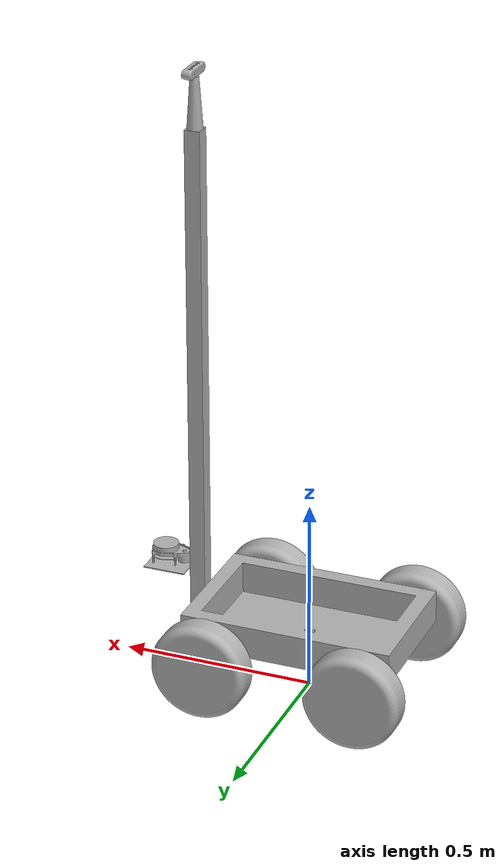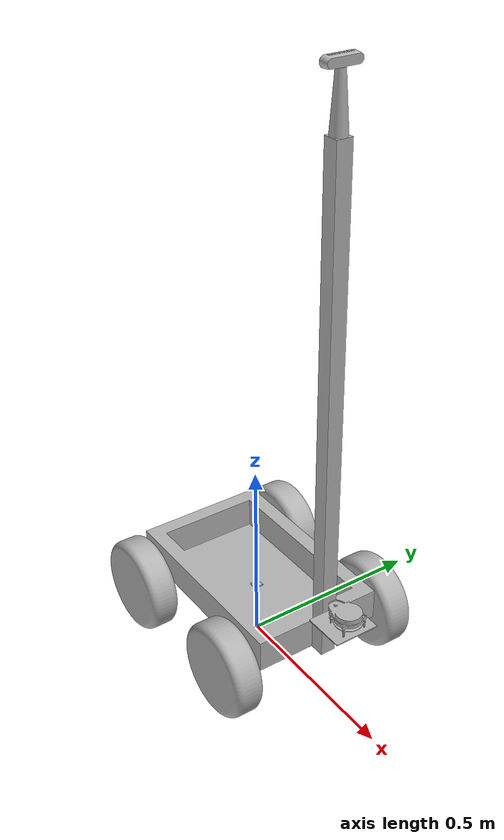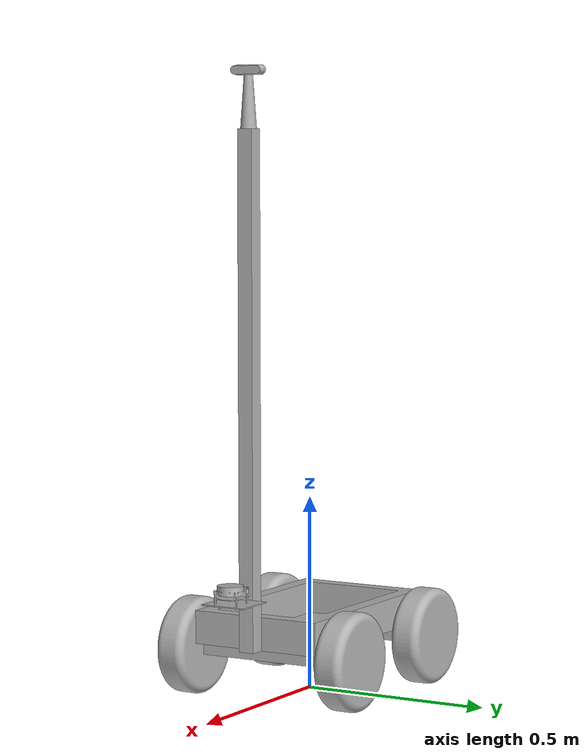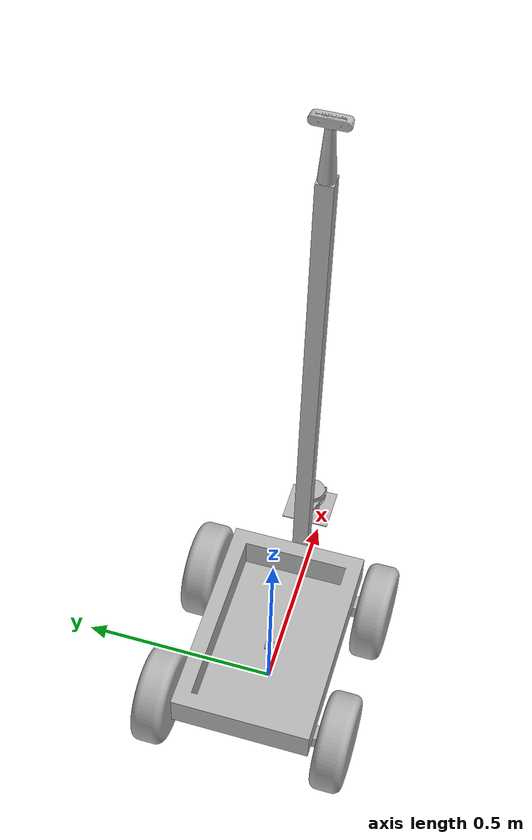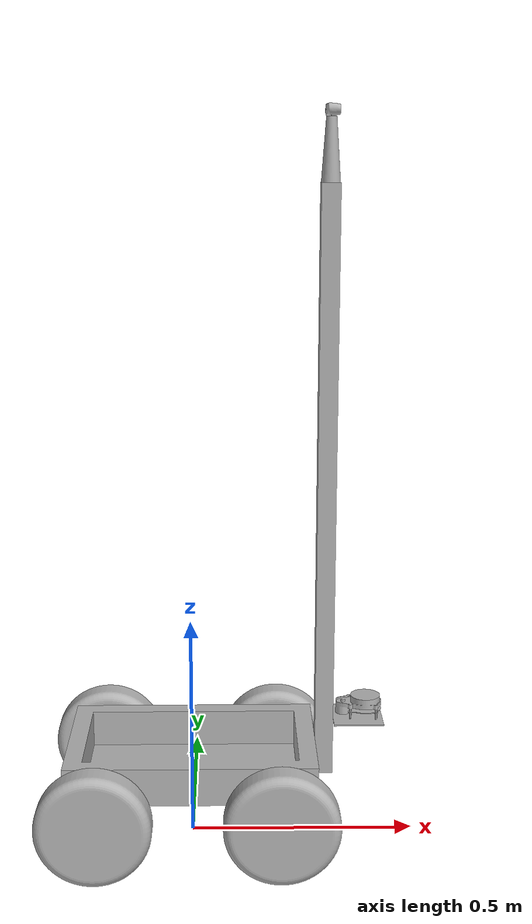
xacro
<?xml version="1.0" ?>
<robot name="Astolf_urdf" xmlns:xacro="http://www.ros.org/wiki/xacro">

<xacro:include filename="$(find Astolf_urdf_description)/urdf/materials.xacro" />
<xacro:include filename="$(find Astolf_urdf_description)/urdf/Astolf_urdf.trans" />
<xacro:include filename="$(find Astolf_urdf_description)/urdf/Astolf_urdf.gazebo" />
<link name="base_link">
  <inertial>
    <origin xyz="0.0005019490136826831 -0.0001572799951760828 0.18620132162083142" rpy="0 0 0"/>
    <mass value="15.740460000000004"/>
    <inertia ixx="0.288422" iyy="0.600365" izz="0.8684" ixy="0.0" iyz="0.0" ixz="0.0"/>
  </inertial>
  <visual>
    <origin xyz="0 0 0" rpy="0 0 0"/>
    <geometry>
      <mesh filename="package://Astolf_urdf_description/meshes/base_link.stl" scale="0.001 0.001 0.001"/>
    </geometry>
    <material name="silver"/>
  </visual>
  <collision>
    <origin xyz="0 0 0" rpy="0 0 0"/>
    <geometry>
      <mesh filename="package://Astolf_urdf_description/meshes/base_link.stl" scale="0.001 0.001 0.001"/>
    </geometry>
  </collision>
</link>

<link name="center_profile_1">
  <inertial>
    <origin xyz="0.019999949013682572 -2.799951749104439e-07 0.6500000216791524" rpy="0 0 0"/>
    <mass value="5.616"/>
    <inertia ixx="0.791669" iyy="0.791669" izz="0.001498" ixy="0.0" iyz="-0.0" ixz="0.0"/>
  </inertial>
  <visual>
    <origin xyz="-0.275502 0.000157 -0.145508" rpy="0 0 0"/>
    <geometry>
      <mesh filename="package://Astolf_urdf_description/meshes/center_profile_1.stl" scale="0.001 0.001 0.001"/>
    </geometry>
    <material name="silver"/>
  </visual>
  <collision>
    <origin xyz="-0.275502 0.000157 -0.145508" rpy="0 0 0"/>
    <geometry>
      <mesh filename="package://Astolf_urdf_description/meshes/center_profile_1.stl" scale="0.001 0.001 0.001"/>
    </geometry>
  </collision>
</link>

<link name="lidar_suport_1">
  <inertial>
    <origin xyz="0.5499999490136825 0.24999972000482418 0.11300002167915246" rpy="0 0 0"/>
    <mass value="0.10692000000000024"/>
    <inertia ixx="0.000128" iyy="0.000108" izz="0.000236" ixy="0.0" iyz="-0.0" ixz="0.0"/>
  </inertial>
  <visual>
    <origin xyz="0.179498 0.250157 -0.165508" rpy="0 0 0"/>
    <geometry>
      <mesh filename="package://Astolf_urdf_description/meshes/lidar_suport_1.stl" scale="0.001 0.001 0.001"/>
    </geometry>
    <material name="silver"/>
  </visual>
  <collision>
    <origin xyz="0.179498 0.250157 -0.165508" rpy="0 0 0"/>
    <geometry>
      <mesh filename="package://Astolf_urdf_description/meshes/lidar_suport_1.stl" scale="0.001 0.001 0.001"/>
    </geometry>
  </collision>
</link>

<link name="realsense_suport_1">
  <inertial>
    <origin xyz="0.4947231360152813 0.2499685125835737 0.03257630512957688" rpy="0 0 0"/>
    <mass value="0.10595838064168012"/>
    <inertia ixx="0.000143" iyy="0.000143" izz="1.4e-05" ixy="-0.0" iyz="0.0" ixz="-0.0"/>
  </inertial>
  <visual>
    <origin xyz="0.199498 0.250157 -1.465508" rpy="0 0 0"/>
    <geometry>
      <mesh filename="package://Astolf_urdf_description/meshes/realsense_suport_1.stl" scale="0.001 0.001 0.001"/>
    </geometry>
    <material name="silver"/>
  </visual>
  <collision>
    <origin xyz="0.199498 0.250157 -1.465508" rpy="0 0 0"/>
    <geometry>
      <mesh filename="package://Astolf_urdf_description/meshes/realsense_suport_1.stl" scale="0.001 0.001 0.001"/>
    </geometry>
  </collision>
</link>

<link name="front_m_1">
  <inertial>
    <origin xyz="0.19499994901368256 0.24999972000482393 -0.03999997832084756" rpy="0 0 0"/>
    <mass value="4.772799999999999"/>
    <inertia ixx="0.058069" iyy="0.001273" izz="0.058069" ixy="0.0" iyz="0.0" ixz="-0.0"/>
  </inertial>
  <visual>
    <origin xyz="-0.000502 0.250157 -0.165508" rpy="0 0 0"/>
    <geometry>
      <mesh filename="package://Astolf_urdf_description/meshes/front_m_1.stl" scale="0.001 0.001 0.001"/>
    </geometry>
    <material name="silver"/>
  </visual>
  <collision>
    <origin xyz="-0.000502 0.250157 -0.165508" rpy="0 0 0"/>
    <geometry>
      <mesh filename="package://Astolf_urdf_description/meshes/front_m_1.stl" scale="0.001 0.001 0.001"/>
    </geometry>
  </collision>
</link>

<link name="back_m_1">
  <inertial>
    <origin xyz="-0.20500005098631743 0.24999972000482393 -0.03999997832084756" rpy="0 0 0"/>
    <mass value="4.772799999999999"/>
    <inertia ixx="0.058069" iyy="0.001273" izz="0.058069" ixy="0.0" iyz="-0.0" ixz="-0.0"/>
  </inertial>
  <visual>
    <origin xyz="-0.000502 0.250157 -0.165508" rpy="0 0 0"/>
    <geometry>
      <mesh filename="package://Astolf_urdf_description/meshes/back_m_1.stl" scale="0.001 0.001 0.001"/>
    </geometry>
    <material name="silver"/>
  </visual>
  <collision>
    <origin xyz="-0.000502 0.250157 -0.165508" rpy="0 0 0"/>
    <geometry>
      <mesh filename="package://Astolf_urdf_description/meshes/back_m_1.stl" scale="0.001 0.001 0.001"/>
    </geometry>
  </collision>
</link>

<link name="front_right_wheel_1">
  <inertial>
    <origin xyz="-5.098631744582249e-08 -0.04000027999517608 2.1679152389930678e-08" rpy="0 0 0"/>
    <mass value="3.531183471946012"/>
    <inertia ixx="0.015179" iyy="0.02677" izz="0.015179" ixy="0.0" iyz="-0.0" ixz="-0.0"/>
  </inertial>
  <visual>
    <origin xyz="-0.195502 0.190157 -0.125508" rpy="0 0 0"/>
    <geometry>
      <mesh filename="package://Astolf_urdf_description/meshes/front_right_wheel_1.stl" scale="0.001 0.001 0.001"/>
    </geometry>
    <material name="silver"/>
  </visual>
  <collision>
    <origin xyz="-0.195502 0.190157 -0.125508" rpy="0 0 0"/>
    <geometry>
      <mesh filename="package://Astolf_urdf_description/meshes/front_right_wheel_1.stl" scale="0.001 0.001 0.001"/>
    </geometry>
  </collision>
</link>

<link name="front_left_wheel_1">
  <inertial>
    <origin xyz="-5.0986317362555766e-08 0.039999720004823824 2.1679152417686254e-08" rpy="0 0 0"/>
    <mass value="3.5311834719460093"/>
    <inertia ixx="0.015179" iyy="0.02677" izz="0.015179" ixy="-0.0" iyz="-0.0" ixz="-0.0"/>
  </inertial>
  <visual>
    <origin xyz="-0.195502 -0.189843 -0.125508" rpy="0 0 0"/>
    <geometry>
      <mesh filename="package://Astolf_urdf_description/meshes/front_left_wheel_1.stl" scale="0.001 0.001 0.001"/>
    </geometry>
    <material name="silver"/>
  </visual>
  <collision>
    <origin xyz="-0.195502 -0.189843 -0.125508" rpy="0 0 0"/>
    <geometry>
      <mesh filename="package://Astolf_urdf_description/meshes/front_left_wheel_1.stl" scale="0.001 0.001 0.001"/>
    </geometry>
  </collision>
</link>

<link name="back_right_wheel_1">
  <inertial>
    <origin xyz="-5.098631741806692e-08 -0.04000027999517605 2.1679152417686254e-08" rpy="0 0 0"/>
    <mass value="3.5311834719460125"/>
    <inertia ixx="0.015179" iyy="0.02677" izz="0.015179" ixy="-0.0" iyz="0.0" ixz="0.0"/>
  </inertial>
  <visual>
    <origin xyz="0.204498 0.190157 -0.125508" rpy="0 0 0"/>
    <geometry>
      <mesh filename="package://Astolf_urdf_description/meshes/back_right_wheel_1.stl" scale="0.001 0.001 0.001"/>
    </geometry>
    <material name="silver"/>
  </visual>
  <collision>
    <origin xyz="0.204498 0.190157 -0.125508" rpy="0 0 0"/>
    <geometry>
      <mesh filename="package://Astolf_urdf_description/meshes/back_right_wheel_1.stl" scale="0.001 0.001 0.001"/>
    </geometry>
  </collision>
</link>

<link name="back_left_wheel_1">
  <inertial>
    <origin xyz="-5.098631741806692e-08 0.03999972000482391 2.1679152417686254e-08" rpy="0 0 0"/>
    <mass value="3.5311834719460125"/>
    <inertia ixx="0.015179" iyy="0.02677" izz="0.015179" ixy="-0.0" iyz="-0.0" ixz="0.0"/>
  </inertial>
  <visual>
    <origin xyz="0.204498 -0.189843 -0.125508" rpy="0 0 0"/>
    <geometry>
      <mesh filename="package://Astolf_urdf_description/meshes/back_left_wheel_1.stl" scale="0.001 0.001 0.001"/>
    </geometry>
    <material name="silver"/>
  </visual>
  <collision>
    <origin xyz="0.204498 -0.189843 -0.125508" rpy="0 0 0"/>
    <geometry>
      <mesh filename="package://Astolf_urdf_description/meshes/back_left_wheel_1.stl" scale="0.001 0.001 0.001"/>
    </geometry>
  </collision>
</link>

<link name="realsense_v1_1">
  <inertial>
    <origin xyz="0.0019013299758136593 0.0002471103422558397 0.012439157194748862" rpy="0 0 0"/>
    <mass value="0.3513213158108225"/>
    <inertia ixx="0.000227" iyy="3.2e-05" izz="0.000229" ixy="-1e-06" iyz="-0.0" ixz="-0.0"/>
  </inertial>
  <visual>
    <origin xyz="-0.295173 0.000179 -1.575508" rpy="0 0 0"/>
    <geometry>
      <mesh filename="package://Astolf_urdf_description/meshes/realsense_v1_1.stl" scale="0.001 0.001 0.001"/>
    </geometry>
    <material name="silver"/>
  </visual>
  <collision>
    <origin xyz="-0.295173 0.000179 -1.575508" rpy="0 0 0"/>
    <geometry>
      <mesh filename="package://Astolf_urdf_description/meshes/realsense_v1_1.stl" scale="0.001 0.001 0.001"/>
    </geometry>
  </collision>
</link>

<link name="imu_v2_1">
  <inertial>
    <origin xyz="-8.255948388489467e-07 -2.2100343875138266e-06 0.001172304932095719" rpy="0 0 0"/>
    <mass value="0.010319775464356156"/>
    <inertia ixx="0.0" iyy="1e-06" izz="1e-06" ixy="0.0" iyz="0.0" ixz="0.0"/>
  </inertial>
  <visual>
    <origin xyz="-0.000502 0.000157 -0.147508" rpy="0 0 0"/>
    <geometry>
      <mesh filename="package://Astolf_urdf_description/meshes/imu_v2_1.stl" scale="0.001 0.001 0.001"/>
    </geometry>
    <material name="silver"/>
  </visual>
  <collision>
    <origin xyz="-0.000502 0.000157 -0.147508" rpy="0 0 0"/>
    <geometry>
      <mesh filename="package://Astolf_urdf_description/meshes/imu_v2_1.stl" scale="0.001 0.001 0.001"/>
    </geometry>
  </collision>
</link>

<link name="rplidar_a1_v4_1">
  <inertial>
    <origin xyz="0.22718906129107017 0.31100088458894426 0.0073159259596849435" rpy="0 0 0"/>
    <mass value="0.16092740340489478"/>
    <inertia ixx="6e-05" iyy="0.000123" izz="0.000149" ixy="0.0" iyz="0.0" ixz="-1.8e-05"/>
  </inertial>
  <visual>
    <origin xyz="-0.150502 0.310157 -0.303007" rpy="0 0 0"/>
    <geometry>
      <mesh filename="package://Astolf_urdf_description/meshes/rplidar_a1_v4_1.stl" scale="0.001 0.001 0.001"/>
    </geometry>
    <material name="silver"/>
  </visual>
  <collision>
    <origin xyz="-0.150502 0.310157 -0.303007" rpy="0 0 0"/>
    <geometry>
      <mesh filename="package://Astolf_urdf_description/meshes/rplidar_a1_v4_1.stl" scale="0.001 0.001 0.001"/>
    </geometry>
  </collision>
</link>

<joint name="Rigid1" type="fixed">
  <origin xyz="0.275502 -0.000157 0.145508" rpy="0 0 0"/>
  <parent link="base_link"/>
  <child link="center_profile_1"/>
</joint>

<joint name="Rigid2" type="fixed">
  <origin xyz="-0.455 -0.25 0.02" rpy="0 0 0"/>
  <parent link="center_profile_1"/>
  <child link="lidar_suport_1"/>
</joint>

<joint name="Rigid3" type="fixed">
  <origin xyz="-0.475 -0.25 1.32" rpy="0 0 0"/>
  <parent link="center_profile_1"/>
  <child link="realsense_suport_1"/>
</joint>

<joint name="Rigid9" type="fixed">
  <origin xyz="0.000502 -0.250157 0.165508" rpy="0 0 0"/>
  <parent link="base_link"/>
  <child link="front_m_1"/>
</joint>

<joint name="Rigid10" type="fixed">
  <origin xyz="0.000502 -0.250157 0.165508" rpy="0 0 0"/>
  <parent link="base_link"/>
  <child link="back_m_1"/>
</joint>

<joint name="Rev11" type="continuous">
  <origin xyz="0.195 0.06 -0.04" rpy="0 0 0"/>
  <parent link="front_m_1"/>
  <child link="front_right_wheel_1"/>
  <axis xyz="0.0 -1.0 0.0"/>
</joint>

<joint name="Rev12" type="continuous">
  <origin xyz="0.195 0.44 -0.04" rpy="0 0 0"/>
  <parent link="front_m_1"/>
  <child link="front_left_wheel_1"/>
  <axis xyz="-0.0 1.0 0.0"/>
</joint>

<joint name="Rev13" type="continuous">
  <origin xyz="-0.205 0.06 -0.04" rpy="0 0 0"/>
  <parent link="back_m_1"/>
  <child link="back_right_wheel_1"/>
  <axis xyz="0.0 -1.0 0.0"/>
</joint>

<joint name="Rev14" type="continuous">
  <origin xyz="-0.205 0.44 -0.04" rpy="0 0 0"/>
  <parent link="back_m_1"/>
  <child link="back_left_wheel_1"/>
  <axis xyz="-0.0 1.0 0.0"/>
</joint>

<joint name="Rigid15" type="fixed">
  <origin xyz="0.494671 0.249978 0.11" rpy="0 0 0"/>
  <parent link="realsense_suport_1"/>
  <child link="realsense_v1_1"/>
</joint>

<joint name="Rigid16" type="fixed">
  <origin xyz="0.000502 -0.000157 0.147508" rpy="0 0 0"/>
  <parent link="base_link"/>
  <child link="imu_v2_1"/>
</joint>

<joint name="Rigid17" type="fixed">
  <origin xyz="0.33 -0.06 0.137499" rpy="0 0 0"/>
  <parent link="lidar_suport_1"/>
  <child link="rplidar_a1_v4_1"/>
</joint>

</robot>

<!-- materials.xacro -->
<robot name="Astolf_urdf" xmlns:xacro="http://www.ros.org/wiki/xacro" >

<material name="silver">
  <color rgba="0.700 0.700 0.700 1.000"/>
</material>

</robot>

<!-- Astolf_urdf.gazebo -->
<robot name="Astolf_urdf" xmlns:xacro="http://www.ros.org/wiki/xacro" >

<xacro:property name="body_color" value="Gazebo/Silver" />

<gazebo>
  <plugin name="control" filename="libgazebo_ros_control.so"/>
</gazebo>
<gazebo reference="base_link">
  <material>${body_color}</material>
  <mu1>0.2</mu1>
  <mu2>0.2</mu2>
  <selfCollide>true</selfCollide>
  <gravity>true</gravity>
</gazebo>

<gazebo reference="center_profile_1">
  <material>${body_color}</material>
  <mu1>0.2</mu1>
  <mu2>0.2</mu2>
  <selfCollide>true</selfCollide>
</gazebo>

<gazebo reference="lidar_suport_1">
  <material>${body_color}</material>
  <mu1>0.2</mu1>
  <mu2>0.2</mu2>
  <selfCollide>true</selfCollide>
</gazebo>

<gazebo reference="realsense_suport_1">
  <material>${body_color}</material>
  <mu1>0.2</mu1>
  <mu2>0.2</mu2>
  <selfCollide>true</selfCollide>
</gazebo>

<gazebo reference="front_m_1">
  <material>${body_color}</material>
  <mu1>0.2</mu1>
  <mu2>0.2</mu2>
  <selfCollide>true</selfCollide>
</gazebo>

<gazebo reference="back_m_1">
  <material>${body_color}</material>
  <mu1>0.2</mu1>
  <mu2>0.2</mu2>
  <selfCollide>true</selfCollide>
</gazebo>

<gazebo reference="front_right_wheel_1">
  <material>${body_color}</material>
  <mu1>0.2</mu1>
  <mu2>0.2</mu2>
  <selfCollide>true</selfCollide>
</gazebo>

<gazebo reference="front_left_wheel_1">
  <material>${body_color}</material>
  <mu1>0.2</mu1>
  <mu2>0.2</mu2>
  <selfCollide>true</selfCollide>
</gazebo>

<gazebo reference="back_right_wheel_1">
  <material>${body_color}</material>
  <mu1>0.2</mu1>
  <mu2>0.2</mu2>
  <selfCollide>true</selfCollide>
</gazebo>

<gazebo reference="back_left_wheel_1">
  <material>${body_color}</material>
  <mu1>0.2</mu1>
  <mu2>0.2</mu2>
  <selfCollide>true</selfCollide>
</gazebo>

<gazebo reference="realsense_v1_1">
  <material>${body_color}</material>
  <mu1>0.2</mu1>
  <mu2>0.2</mu2>
  <selfCollide>true</selfCollide>
</gazebo>

<gazebo reference="imu_v2_1">
  <material>${body_color}</material>
  <mu1>0.2</mu1>
  <mu2>0.2</mu2>
  <selfCollide>true</selfCollide>
</gazebo>

<gazebo reference="rplidar_a1_v4_1">
  <material>${body_color}</material>
  <mu1>0.2</mu1>
  <mu2>0.2</mu2>
  <selfCollide>true</selfCollide>
</gazebo>

</robot>
